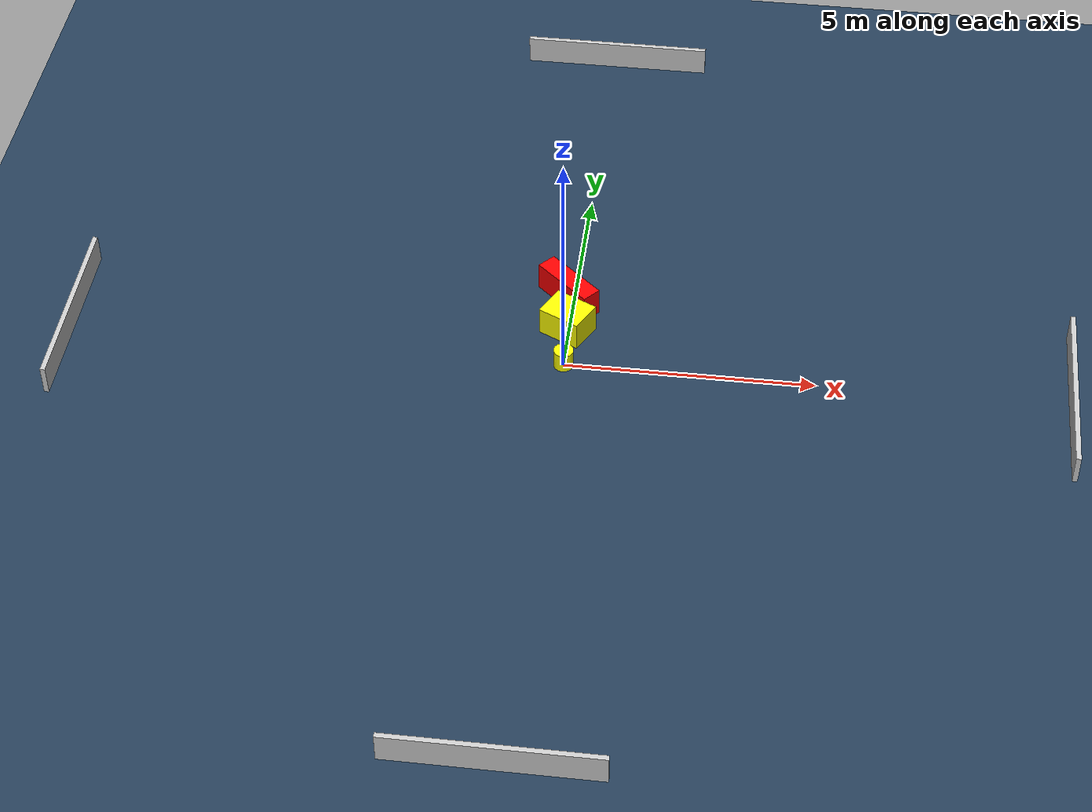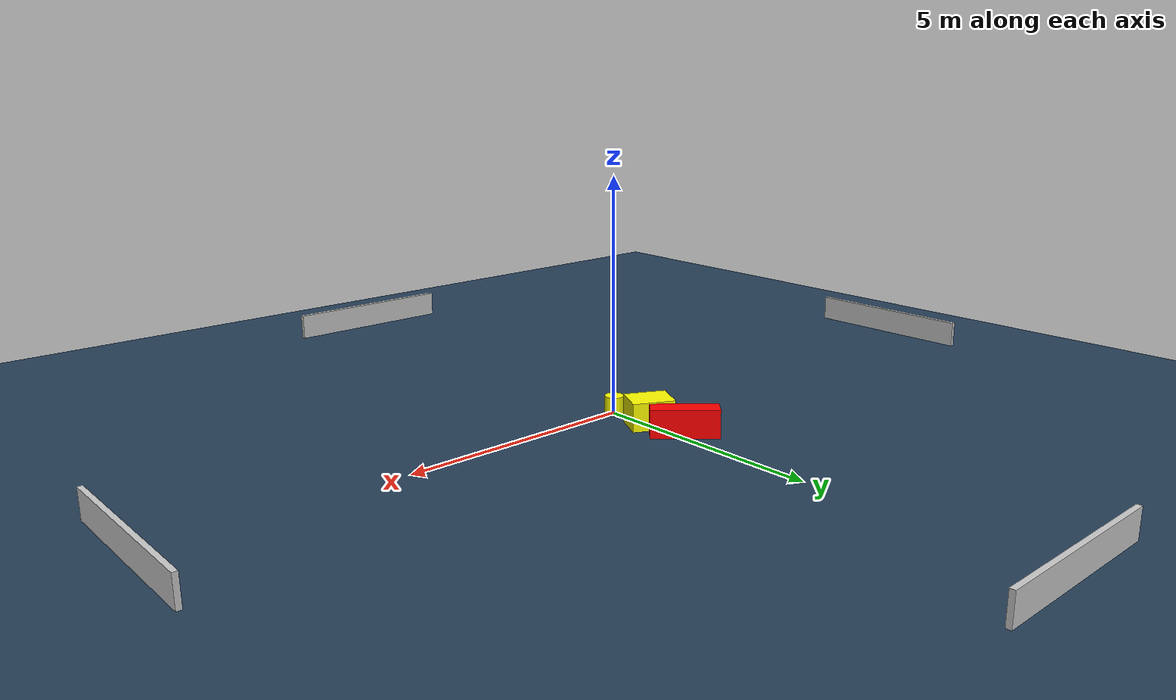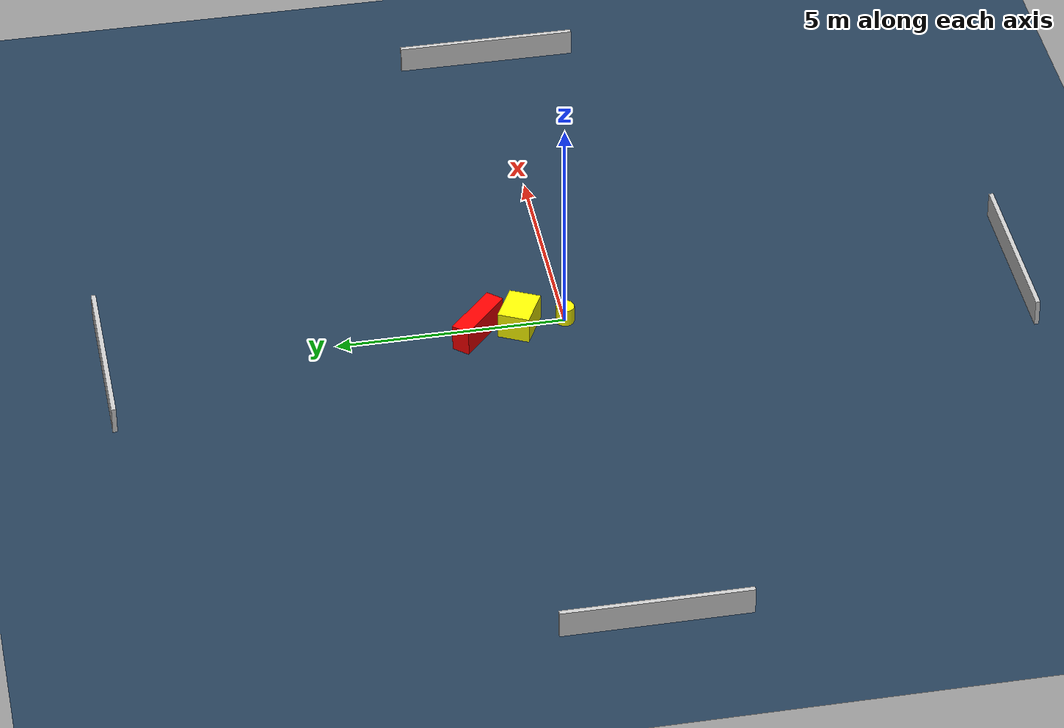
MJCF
<?xml version="1.0" ?>
<mujoco model="generated_environment">
  <option timestep="0.01" integrator="RK4" cone="elliptic"/>
  <default>
    <geom density="1"/>
  </default>
  <asset>
    <texture builtin="gradient" height="3072" name="skybox" rgb1="0.3 0.5 0.7" rgb2="0 0 0" type="skybox" width="512"/>
    <texture builtin="checker" height="300" name="groundplane" rgb1="0.2 0.3 0.4" rgb2="0.1 0.2 0.3" type="2d" width="300"/>
    <material name="groundplane" reflectance="0.2" texrepeat="5 5" texture="groundplane"/>
  </asset>
  <worldbody>
    <light dir="0 0 -1" directional="true" pos="0 0 1.5"/>
    <geom condim="3" friction="0.5 0.005 0.001" material="groundplane" name="floor" pos="0 0 0" size="0 0 0.05" type="plane"/>
    <body name="walls">
      <geom name="wall_1" condim="4" pos="-10.0 0.0 0.3" rgba="0.800000011920929 0.800000011920929 0.800000011920929 1.0" size="0.05 2.0 0.3" type="box"/>
      <geom name="wall_2" condim="4" pos="10.0 0.0 0.3" rgba="0.800000011920929 0.800000011920929 0.800000011920929 1.0" size="0.05 2.0 0.3" type="box"/>
      <geom name="wall_3" condim="4" pos="0.0 -10.0 0.3" rgba="0.800000011920929 0.800000011920929 0.800000011920929 1.0" size="2.0 0.05 0.3" type="box"/>
      <geom name="wall_4" condim="4" pos="0.0 10.0 0.3" rgba="0.800000011920929 0.800000011920929 0.800000011920929 1.0" size="2.0 0.05 0.3" type="box"/>
    </body>
    <body name="robot">
      <joint name="joint_x" type="slide" pos="0 0 0" axis="1 0 0"/>
      <joint name="joint_y" type="slide" pos="0 0 0" axis="0 1 0"/>
      <geom name="robot" type="cylinder" pos="0.0 0.0 0.2" size="0.2 0.2 0.0" mass="5.0" friction="1.0 0.005 0.0001" condim="4" rgba="1.0 1.0 0.0 1.0"/>
    </body>
    <body name="obstacle_1_movable">
      <geom name="obstacle_1_movable" condim="4" pos="-0.0416932849310955 1.0160254439801366 0.3" euler="0 0 333.2451006923807" friction="0.0 0.005 0.001" rgba="1.0 1.0 0.0 1.0" size="0.4483197926926019 0.3500219594639863 0.3" type="box" mass="0.1"/>
      <joint type="free"/>
    </body>
    <body name="obstacle_2_static">
      <geom name="obstacle_2_static" condim="4" pos="-0.1285774087505759 1.9365057469740248 0.3" euler="0 0 228.1306584108449" friction="0.0 0.005 0.001" rgba="1.0 0.0 0.0 1.0" size="0.20517633846442096 0.6993855188028063 0.3" type="box"/>
    </body>
  </worldbody>
  <actuator>
    <motor name="actuator_x" joint="joint_x" gear="1" ctrlrange="-1 1"/>
    <motor name="actuator_y" joint="joint_y" gear="1" ctrlrange="-1 1"/>
  </actuator>
</mujoco>
